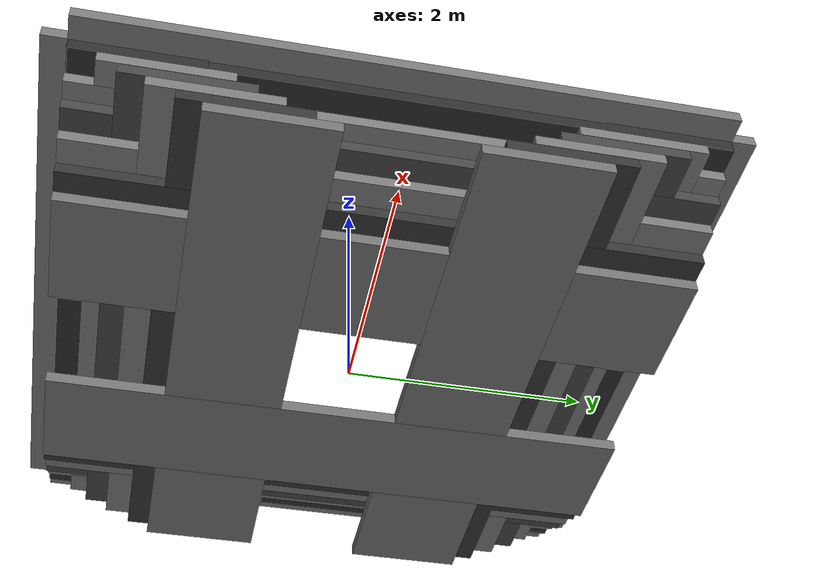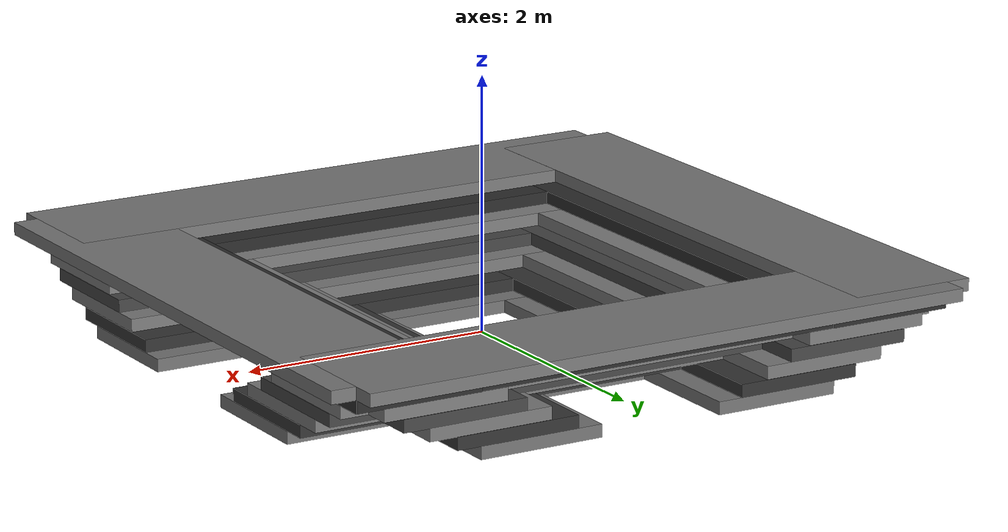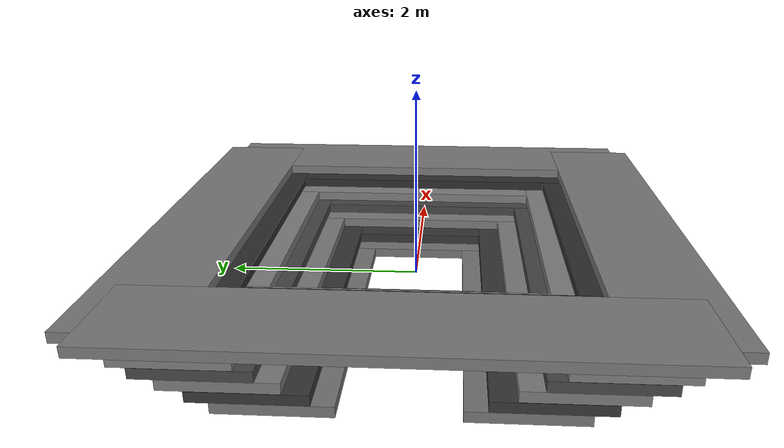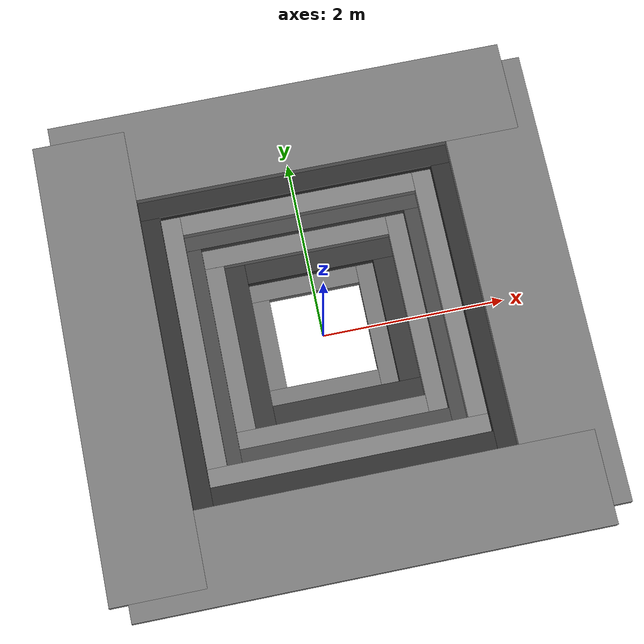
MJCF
<mujoco model="random_box_terrain">
    <compiler angle="degree" coordinate="local"/>
    <option timestep="0.01" gravity="0 0 -9.81" integrator="RK4"/>

    <worldbody>
        <body name="terrain" pos="0.0 1.0 -0.1">
            <!-- 北丐 -->

            <geom type="box" pos="0.0 0.0 0.1"                  size="2.5 0.5 0.05" euler="-0.0016541826958438952 0.003978741756526811 0.0" rgba="0.45642974452627005 0.45642974452627005 0.45642974452627005 1"/>
            <geom type="box" pos="0.0 0.1924253653411231 0.199" size="2.5 0.5 0.05" euler="0.004606085265194683 -0.008683486689821128 0.0" rgba="0.2086589921084948 0.2086589921084948 0.2086589921084948 1"/>
            <geom type="box" pos="0.0 0.4150078304552202 0.301" size="2.5 0.5 0.05" euler="-0.005117001080870354 0.006836200573374621 0.0" rgba="0.4819473066025358 0.4819473066025358 0.4819473066025358 1"/>
            <geom type="box" pos="0.0 0.6208312225058907 0.399" size="2.5 0.5 0.05" euler="-0.007985034869961249 0.005025552611015994 0.0" rgba="0.2758677559403653 0.2758677559403653 0.2758677559403653 1"/>
            <geom type="box" pos="0.0 0.7792291355792123 0.501" size="2.5 0.5 0.05" euler="0.00928730902835465 -0.007589924166500537 0.0" rgba="0.4940033554743374 0.4940033554743374 0.4940033554743374 1"/>
            <geom type="box" pos="0.0 0.9905950062453768 0.599" size="2.5 0.5 0.05" euler="-0.005169037767240659 0.0024005187179183783 0.0" rgba="0.17790139178939138 0.17790139178939138 0.17790139178939138 1"/>
            <geom type="box" pos="0.0 1.1968522954824385 0.701" size="2.5 0.5 0.05" euler="-0.002336274037887307 -0.002628319017217602 0.0" rgba="0.4746097269132761 0.4746097269132761 0.4746097269132761 1"/>

            <!-- 东邪 -->
            <geom type="box" pos="1.0                -1.0 0.1"   size="0.5 2.5 0.05" euler="-0.0016541826958438952 0.003978741756526811 0.0" rgba="0.45642974452627005 0.45642974452627005 0.45642974452627005 1"/>
            <geom type="box" pos="1.1924253653411231 -1.0 0.199" size="0.5 2.5 0.05" euler="0.004606085265194683 -0.008683486689821128 0.0" rgba="0.2086589921084948 0.2086589921084948 0.2086589921084948 1"/>
            <geom type="box" pos="1.4150078304552202 -1.0 0.301" size="0.5 2.5 0.05" euler="-0.005117001080870354 0.006836200573374621 0.0" rgba="0.4819473066025358 0.4819473066025358 0.4819473066025358 1"/>
            <geom type="box" pos="1.6208312225058907 -1.0 0.399" size="0.5 2.5 0.05" euler="-0.007985034869961249 0.005025552611015994 0.0" rgba="0.2758677559403653 0.2758677559403653 0.2758677559403653 1"/>
            <geom type="box" pos="1.7792291355792123 -1.0 0.501" size="0.5 2.5 0.05" euler="0.00928730902835465 -0.007589924166500537 0.0" rgba="0.4940033554743374 0.4940033554743374 0.4940033554743374 1"/>
            <geom type="box" pos="1.9905950062453768 -1.0 0.599" size="0.5 2.5 0.05" euler="-0.005169037767240659 0.0024005187179183783 0.0" rgba="0.17790139178939138 0.17790139178939138 0.17790139178939138 1"/>
            <geom type="box" pos="2.1968522954824385 -1.0 0.701" size="0.5 2.5 0.05" euler="-0.002336274037887307 -0.002628319017217602 0.0" rgba="0.4746097269132761 0.4746097269132761 0.4746097269132761 1"/>

            <!-- 南帝 -->
            <geom type="box" pos="0.0 -2.0                 0.1"  size="2.5 0.5 0.05" euler="-0.0016541826958438952 0.003978741756526811 0.0" rgba="0.45642974452627005 0.45642974452627005 0.45642974452627005 1"/>
            <geom type="box" pos="0.0 -2.1924253653411231 0.199" size="2.5 0.5 0.05" euler="0.004606085265194683 -0.008683486689821128 0.0" rgba="0.2086589921084948 0.2086589921084948 0.2086589921084948 1"/>
            <geom type="box" pos="0.0 -2.4150078304552202 0.301" size="2.5 0.5 0.05" euler="-0.005117001080870354 0.006836200573374621 0.0" rgba="0.4819473066025358 0.4819473066025358 0.4819473066025358 1"/>
            <geom type="box" pos="0.0 -2.6208312225058907 0.399" size="2.5 0.5 0.05" euler="-0.007985034869961249 0.005025552611015994 0.0" rgba="0.2758677559403653 0.2758677559403653 0.2758677559403653 1"/>
            <geom type="box" pos="0.0 -2.7792291355792123 0.501" size="2.5 0.5 0.05" euler="0.00928730902835465 -0.007589924166500537 0.0" rgba="0.4940033554743374 0.4940033554743374 0.4940033554743374 1"/>
            <geom type="box" pos="0.0 -2.9905950062453768 0.599" size="2.5 0.5 0.05" euler="-0.005169037767240659 0.0024005187179183783 0.0" rgba="0.17790139178939138 0.17790139178939138 0.17790139178939138 1"/>
            <geom type="box" pos="0.0 -3.1968522954824385 0.701" size="2.5 0.5 0.05" euler="-0.002336274037887307 -0.002628319017217602 0.0" rgba="0.4746097269132761 0.4746097269132761 0.4746097269132761 1"/>

            <!-- 西毒 -->
            <geom type="box" pos="-1.0                -1.0 0.1"   size="0.5 2.5 0.05" euler="-0.0016541826958438952 0.003978741756526811 0.0" rgba="0.45642974452627005 0.45642974452627005 0.45642974452627005 1"/>
            <geom type="box" pos="-1.1924253653411231 -1.0 0.199" size="0.5 2.5 0.05" euler="0.004606085265194683 -0.008683486689821128 0.0" rgba="0.2086589921084948 0.2086589921084948 0.2086589921084948 1"/>
            <geom type="box" pos="-1.4150078304552202 -1.0 0.301" size="0.5 2.5 0.05" euler="-0.005117001080870354 0.006836200573374621 0.0" rgba="0.4819473066025358 0.4819473066025358 0.4819473066025358 1"/>
            <geom type="box" pos="-1.6208312225058907 -1.0 0.399" size="0.5 2.5 0.05" euler="-0.007985034869961249 0.005025552611015994 0.0" rgba="0.2758677559403653 0.2758677559403653 0.2758677559403653 1"/>
            <geom type="box" pos="-1.7792291355792123 -1.0 0.501" size="0.5 2.5 0.05" euler="0.00928730902835465 -0.007589924166500537 0.0" rgba="0.4940033554743374 0.4940033554743374 0.4940033554743374 1"/>
            <geom type="box" pos="-1.9905950062453768 -1.0 0.599" size="0.5 2.5 0.05" euler="-0.005169037767240659 0.0024005187179183783 0.0" rgba="0.17790139178939138 0.17790139178939138 0.17790139178939138 1"/>
            <geom type="box" pos="-2.1968522954824385 -1.0 0.701" size="0.5 2.5 0.05" euler="-0.002336274037887307 -0.002628319017217602 0.0" rgba="0.4746097269132761 0.4746097269132761 0.4746097269132761 1"/>

        </body>
    </worldbody>

    <actuator>
        <!-- 在这里你可以定义一些控制器 -->
    </actuator>

</mujoco>
